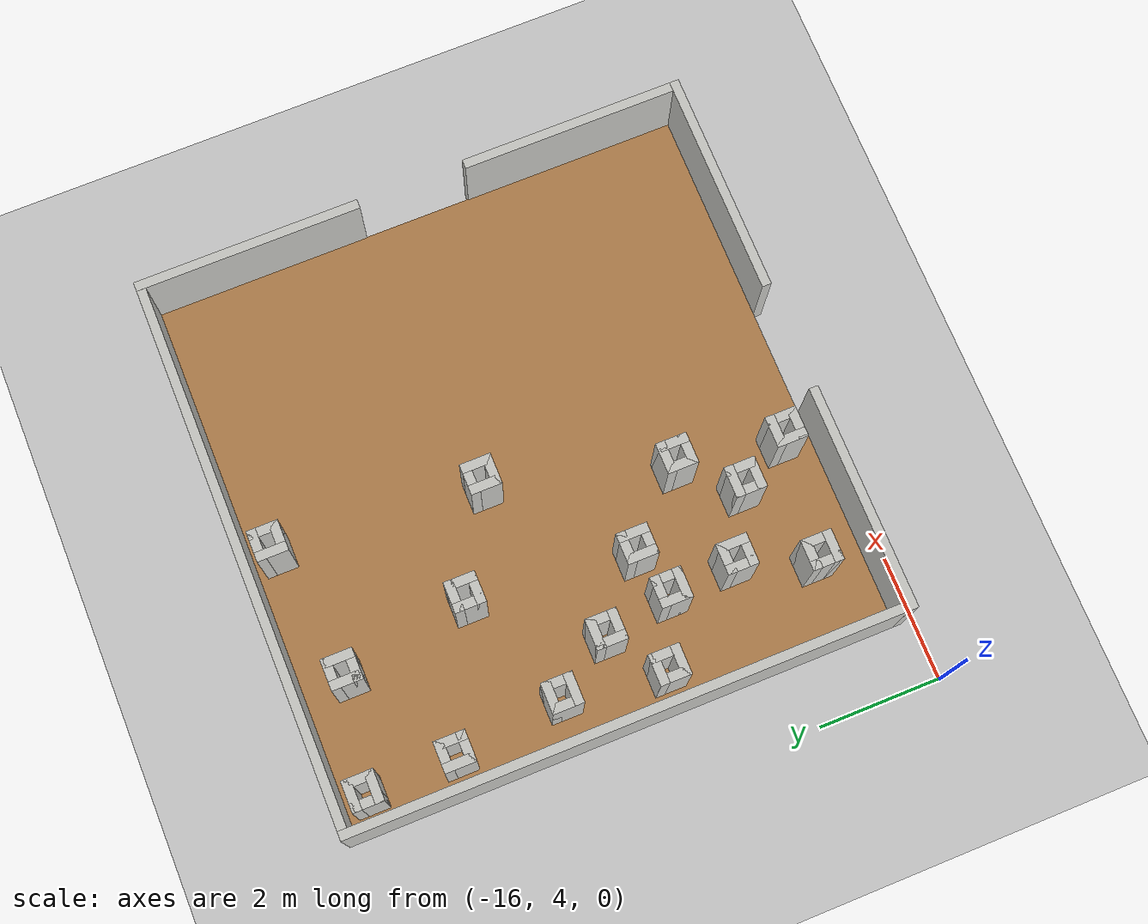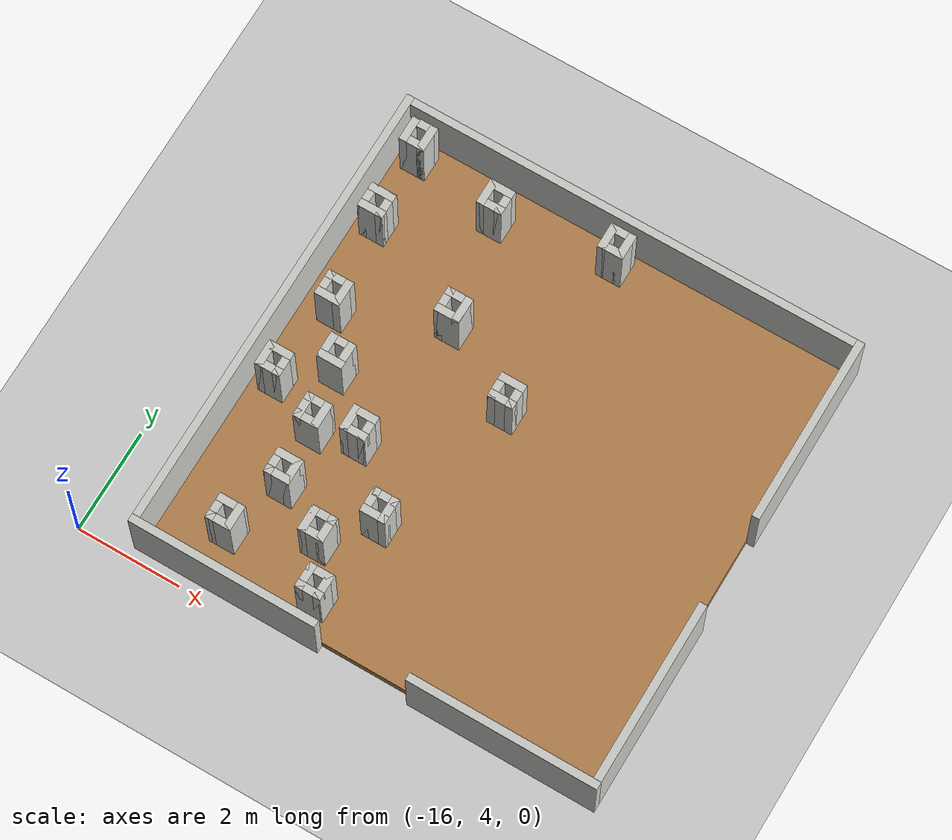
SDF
<sdf version="1.6">
 <world name="default">
  <model name="ground_plane">
   <static>1</static>
   <link name="link">
    <collision name="collision">
     <geometry><plane><normal>0 0 1</normal><size>100 100</size></plane></geometry>
     <surface><friction><ode><mu>100</mu><mu2>50</mu2></ode></friction></surface>
    </collision>
    <visual name="visual">
     <cast_shadows>0</cast_shadows>
     <geometry><plane><normal>0 0 1</normal><size>100 100</size></plane></geometry>
     <material>
      <script><uri>file://media/materials/scripts/gazebo.material</uri><name>Gazebo/Grey</name></script>
     </material>
    </visual>
   </link>
  </model>
  <model name="nerve_room_5x5ARENA_right">
   <pose>-10.4798 8.71779 0 0 -0 1.57</pose>
   <link name="Wall_11">
    <collision name="Wall_11_Collision">
     <geometry><box><size>8.75 0.15 1.5</size></box></geometry>
     <pose>0 0 0.75 0 -0 0</pose>
    </collision>
    <visual name="Wall_11_Visual">
     <pose>0 0 0.75 0 -0 0</pose>
     <geometry><box><size>8.75 0.15 1.5</size></box></geometry>
     <material>
      <script><uri>file://media/materials/scripts/gazebo.material</uri><name>Gazebo/CeilingTiled</name></script>
      <ambient>1 0.764706 0.305882 1</ambient>
     </material>
    </visual>
    <pose>4.44912 -0.000431 0 0 0 -1.5708</pose>
   </link>
   <link name="Wall_13">
    <collision name="Wall_13_Collision">
     <geometry><box><size>3.65 0.15 1.5</size></box></geometry>
     <pose>0 0 0.75 0 -0 0</pose>
    </collision>
    <visual name="Wall_13_Visual">
     <pose>0 0 0.75 0 -0 0</pose>
     <geometry><box><size>3.65 0.15 1.5</size></box></geometry>
     <material>
      <script><uri>file://media/materials/scripts/gazebo.material</uri><name>Gazebo/CeilingTiled</name></script>
      <ambient>1 0.764706 0.305882 1</ambient>
     </material>
    </visual>
    <pose>-4.44961 2.70076 0 0 0 -1.5708</pose>
   </link>
   <link name="Wall_15">
    <collision name="Wall_15_Collision">
     <geometry><box><size>3.65 0.15 1.5</size></box></geometry>
     <pose>0 0 0.75 0 -0 0</pose>
    </collision>
    <visual name="Wall_15_Visual">
     <pose>0 0 0.75 0 -0 0</pose>
     <geometry><box><size>3.65 0.15 1.5</size></box></geometry>
     <material>
      <script><uri>file://media/materials/scripts/gazebo.material</uri><name>Gazebo/CeilingTiled</name></script>
      <ambient>1 0.764706 0.305882 1</ambient>
     </material>
    </visual>
    <pose>2.69961 -4.45076 0 0 -0 0</pose>
   </link>
   <link name="Wall_17">
    <collision name="Wall_17_Collision">
     <geometry><box><size>8.90028 0.15 1.5</size></box></geometry>
     <pose>0 0 0.75 0 -0 0</pose>
    </collision>
    <visual name="Wall_17_Visual">
     <pose>0 0 0.75 0 -0 0</pose>
     <geometry><box><size>8.90028 0.15 1.5</size></box></geometry>
     <material>
      <script><uri>file://media/materials/scripts/gazebo.material</uri><name>Gazebo/CeilingTiled</name></script>
      <ambient>1 0.764706 0.305882 1</ambient>
     </material>
    </visual>
    <pose>0.074346 4.45022 0 0 0 -6.5e-05</pose>
   </link>
   <link name="Wall_21">
    <collision name="Wall_21_Collision">
     <geometry><box><size>3.5 0.15 1.5</size></box></geometry>
     <pose>0 0 0.75 0 -0 0</pose>
    </collision>
    <visual name="Wall_21_Visual">
     <pose>0 0 0.75 0 -0 0</pose>
     <geometry><box><size>3.5 0.15 1.5</size></box></geometry>
     <material>
      <script><uri>file://media/materials/scripts/gazebo.material</uri><name>Gazebo/CeilingTiled</name></script>
      <ambient>1 0.764706 0.305882 1</ambient>
     </material>
    </visual>
    <pose>-2.62383 -4.4498 0 0 -0 0</pose>
   </link>
   <link name="Wall_25">
    <collision name="Wall_25_Collision">
     <geometry><box><size>3.65 0.15 1.5</size></box></geometry>
     <pose>0 0 0.75 0 -0 0</pose>
    </collision>
    <visual name="Wall_25_Visual">
     <pose>0 0 0.75 0 -0 0</pose>
     <geometry><box><size>3.65 0.15 1.5</size></box></geometry>
     <material>
      <script><uri>file://media/materials/scripts/gazebo.material</uri><name>Gazebo/CeilingTiled</name></script>
      <ambient>1 0.764706 0.305882 1</ambient>
     </material>
    </visual>
    <pose>-4.44941 -2.70044 0 0 0 -1.5708</pose>
   </link>
   <link name="Wall_6">
    <collision name="Wall_6_Collision">
     <geometry><box><size>8.76 8.75 0.2</size></box></geometry>
     <pose>0 0 0.1 0 -0 0</pose>
    </collision>
    <visual name="Wall_6_Visual">
     <pose>0 0 0.1 0 -0 0</pose>
     <geometry><box><size>8.76 8.75 0.2</size></box></geometry>
     <material>
      <script><uri>file://media/materials/scripts/gazebo.material</uri><name>Gazebo/Wood</name></script>
      <ambient>1 0.764706 0.305882 1</ambient>
     </material>
    </visual>
    <pose>0.000485 -0.004173 0 0 -0 1.5708</pose>
   </link>
   <static>1</static>
  </model>
  <model name="nerve_obs_squarepillar_large_clone_1">
   <pose>-11.5344 6.57476 0.2 0 -0 0</pose>
   <link name="Wall_31">
    <collision name="Wall_31_Collision">
     <geometry><box><size>0.5 0.15 1.3</size></box></geometry>
     <pose>0 0 0.65 0 -0 0</pose>
    </collision>
    <visual name="Wall_31_Visual">
     <pose>0 0 0.65 0 -0 0</pose>
     <geometry><box><size>0.5 0.15 1.3</size></box></geometry>
     <material>
      <script><uri>file://media/materials/scripts/gazebo.material</uri><name>Gazebo/CeilingTiled</name></script>
      <ambient>1 0.764706 0.305882 1</ambient>
     </material>
    </visual>
    <pose>-0.175 0 0 0 0 -1.5708</pose>
   </link>
   <link name="Wall_32">
    <collision name="Wall_32_Collision">
     <geometry><box><size>0.5 0.15 1.3</size></box></geometry>
     <pose>0 0 0.65 0 -0 0</pose>
    </collision>
    <visual name="Wall_32_Visual">
     <pose>0 0 0.65 0 -0 0</pose>
     <geometry><box><size>0.5 0.15 1.3</size></box></geometry>
     <material>
      <script><uri>file://media/materials/scripts/gazebo.material</uri><name>Gazebo/CeilingTiled</name></script>
      <ambient>1 0.764706 0.305882 1</ambient>
     </material>
    </visual>
    <pose>0 -0.175 0 0 -0 0</pose>
   </link>
   <link name="Wall_33">
    <collision name="Wall_33_Collision">
     <geometry><box><size>0.5 0.15 1.3</size></box></geometry>
     <pose>0 0 0.65 0 -0 0</pose>
    </collision>
    <visual name="Wall_33_Visual">
     <pose>0 0 0.65 0 -0 0</pose>
     <geometry><box><size>0.5 0.15 1.3</size></box></geometry>
     <material>
      <script><uri>file://media/materials/scripts/gazebo.material</uri><name>Gazebo/CeilingTiled</name></script>
      <ambient>1 0.764706 0.305882 1</ambient>
     </material>
    </visual>
    <pose>0.175 0 0 0 -0 1.5708</pose>
   </link>
   <link name="Wall_34">
    <collision name="Wall_34_Collision">
     <geometry><box><size>0.5 0.15 1.3</size></box></geometry>
     <pose>0 0 0.65 0 -0 0</pose>
    </collision>
    <visual name="Wall_34_Visual">
     <pose>0 0 0.65 0 -0 0</pose>
     <geometry><box><size>0.5 0.15 1.3</size></box></geometry>
     <material>
      <script><uri>file://media/materials/scripts/gazebo.material</uri><name>Gazebo/CeilingTiled</name></script>
      <ambient>1 0.764706 0.305882 1</ambient>
     </material>
    </visual>
    <pose>0 0.175 0 0 -0 3.14159</pose>
   </link>
   <static>1</static>
  </model>
  <model name="nerve_obs_squarepillar_large_clone_6">
   <pose>-12.5841 7.65676 0.2 0 -0 0</pose>
   <link name="Wall_31">
    <collision name="Wall_31_Collision">
     <geometry><box><size>0.5 0.15 1.3</size></box></geometry>
     <pose>0 0 0.65 0 -0 0</pose>
    </collision>
    <visual name="Wall_31_Visual">
     <pose>0 0 0.65 0 -0 0</pose>
     <geometry><box><size>0.5 0.15 1.3</size></box></geometry>
     <material>
      <script><uri>file://media/materials/scripts/gazebo.material</uri><name>Gazebo/CeilingTiled</name></script>
      <ambient>1 0.764706 0.305882 1</ambient>
     </material>
    </visual>
    <pose>-0.175 0 0 0 0 -1.5708</pose>
   </link>
   <link name="Wall_32">
    <collision name="Wall_32_Collision">
     <geometry><box><size>0.5 0.15 1.3</size></box></geometry>
     <pose>0 0 0.65 0 -0 0</pose>
    </collision>
    <visual name="Wall_32_Visual">
     <pose>0 0 0.65 0 -0 0</pose>
     <geometry><box><size>0.5 0.15 1.3</size></box></geometry>
     <material>
      <script><uri>file://media/materials/scripts/gazebo.material</uri><name>Gazebo/CeilingTiled</name></script>
      <ambient>1 0.764706 0.305882 1</ambient>
     </material>
    </visual>
    <pose>0 -0.175 0 0 -0 0</pose>
   </link>
   <link name="Wall_33">
    <collision name="Wall_33_Collision">
     <geometry><box><size>0.5 0.15 1.3</size></box></geometry>
     <pose>0 0 0.65 0 -0 0</pose>
    </collision>
    <visual name="Wall_33_Visual">
     <pose>0 0 0.65 0 -0 0</pose>
     <geometry><box><size>0.5 0.15 1.3</size></box></geometry>
     <material>
      <script><uri>file://media/materials/scripts/gazebo.material</uri><name>Gazebo/CeilingTiled</name></script>
      <ambient>1 0.764706 0.305882 1</ambient>
     </material>
    </visual>
    <pose>0.175 0 0 0 -0 1.5708</pose>
   </link>
   <link name="Wall_34">
    <collision name="Wall_34_Collision">
     <geometry><box><size>0.5 0.15 1.3</size></box></geometry>
     <pose>0 0 0.65 0 -0 0</pose>
    </collision>
    <visual name="Wall_34_Visual">
     <pose>0 0 0.65 0 -0 0</pose>
     <geometry><box><size>0.5 0.15 1.3</size></box></geometry>
     <material>
      <script><uri>file://media/materials/scripts/gazebo.material</uri><name>Gazebo/CeilingTiled</name></script>
      <ambient>1 0.764706 0.305882 1</ambient>
     </material>
    </visual>
    <pose>0 0.175 0 0 -0 3.14159</pose>
   </link>
   <static>1</static>
  </model>
  <model name="nerve_obs_squarepillar_large_clone_7">
   <pose>-13.592 8.56687 0.2 0 -0 0</pose>
   <link name="Wall_31">
    <collision name="Wall_31_Collision">
     <geometry><box><size>0.5 0.15 1.3</size></box></geometry>
     <pose>0 0 0.65 0 -0 0</pose>
    </collision>
    <visual name="Wall_31_Visual">
     <pose>0 0 0.65 0 -0 0</pose>
     <geometry><box><size>0.5 0.15 1.3</size></box></geometry>
     <material>
      <script><uri>file://media/materials/scripts/gazebo.material</uri><name>Gazebo/CeilingTiled</name></script>
      <ambient>1 0.764706 0.305882 1</ambient>
     </material>
    </visual>
    <pose>-0.175 0 0 0 0 -1.5708</pose>
   </link>
   <link name="Wall_32">
    <collision name="Wall_32_Collision">
     <geometry><box><size>0.5 0.15 1.3</size></box></geometry>
     <pose>0 0 0.65 0 -0 0</pose>
    </collision>
    <visual name="Wall_32_Visual">
     <pose>0 0 0.65 0 -0 0</pose>
     <geometry><box><size>0.5 0.15 1.3</size></box></geometry>
     <material>
      <script><uri>file://media/materials/scripts/gazebo.material</uri><name>Gazebo/CeilingTiled</name></script>
      <ambient>1 0.764706 0.305882 1</ambient>
     </material>
    </visual>
    <pose>0 -0.175 0 0 -0 0</pose>
   </link>
   <link name="Wall_33">
    <collision name="Wall_33_Collision">
     <geometry><box><size>0.5 0.15 1.3</size></box></geometry>
     <pose>0 0 0.65 0 -0 0</pose>
    </collision>
    <visual name="Wall_33_Visual">
     <pose>0 0 0.65 0 -0 0</pose>
     <geometry><box><size>0.5 0.15 1.3</size></box></geometry>
     <material>
      <script><uri>file://media/materials/scripts/gazebo.material</uri><name>Gazebo/CeilingTiled</name></script>
      <ambient>1 0.764706 0.305882 1</ambient>
     </material>
    </visual>
    <pose>0.175 0 0 0 -0 1.5708</pose>
   </link>
   <link name="Wall_34">
    <collision name="Wall_34_Collision">
     <geometry><box><size>0.5 0.15 1.3</size></box></geometry>
     <pose>0 0 0.65 0 -0 0</pose>
    </collision>
    <visual name="Wall_34_Visual">
     <pose>0 0 0.65 0 -0 0</pose>
     <geometry><box><size>0.5 0.15 1.3</size></box></geometry>
     <material>
      <script><uri>file://media/materials/scripts/gazebo.material</uri><name>Gazebo/CeilingTiled</name></script>
      <ambient>1 0.764706 0.305882 1</ambient>
     </material>
    </visual>
    <pose>0 0.175 0 0 -0 3.14159</pose>
   </link>
   <static>1</static>
  </model>
  <model name="nerve_obs_squarepillar_large_clone_8">
   <pose>-14.4212 11.2732 0.2 0 -0 0</pose>
   <link name="Wall_31">
    <collision name="Wall_31_Collision">
     <geometry><box><size>0.5 0.15 1.3</size></box></geometry>
     <pose>0 0 0.65 0 -0 0</pose>
    </collision>
    <visual name="Wall_31_Visual">
     <pose>0 0 0.65 0 -0 0</pose>
     <geometry><box><size>0.5 0.15 1.3</size></box></geometry>
     <material>
      <script><uri>file://media/materials/scripts/gazebo.material</uri><name>Gazebo/CeilingTiled</name></script>
      <ambient>1 0.764706 0.305882 1</ambient>
     </material>
    </visual>
    <pose>-0.175 0 0 0 0 -1.5708</pose>
   </link>
   <link name="Wall_32">
    <collision name="Wall_32_Collision">
     <geometry><box><size>0.5 0.15 1.3</size></box></geometry>
     <pose>0 0 0.65 0 -0 0</pose>
    </collision>
    <visual name="Wall_32_Visual">
     <pose>0 0 0.65 0 -0 0</pose>
     <geometry><box><size>0.5 0.15 1.3</size></box></geometry>
     <material>
      <script><uri>file://media/materials/scripts/gazebo.material</uri><name>Gazebo/CeilingTiled</name></script>
      <ambient>1 0.764706 0.305882 1</ambient>
     </material>
    </visual>
    <pose>0 -0.175 0 0 -0 0</pose>
   </link>
   <link name="Wall_33">
    <collision name="Wall_33_Collision">
     <geometry><box><size>0.5 0.15 1.3</size></box></geometry>
     <pose>0 0 0.65 0 -0 0</pose>
    </collision>
    <visual name="Wall_33_Visual">
     <pose>0 0 0.65 0 -0 0</pose>
     <geometry><box><size>0.5 0.15 1.3</size></box></geometry>
     <material>
      <script><uri>file://media/materials/scripts/gazebo.material</uri><name>Gazebo/CeilingTiled</name></script>
      <ambient>1 0.764706 0.305882 1</ambient>
     </material>
    </visual>
    <pose>0.175 0 0 0 -0 1.5708</pose>
   </link>
   <link name="Wall_34">
    <collision name="Wall_34_Collision">
     <geometry><box><size>0.5 0.15 1.3</size></box></geometry>
     <pose>0 0 0.65 0 -0 0</pose>
    </collision>
    <visual name="Wall_34_Visual">
     <pose>0 0 0.65 0 -0 0</pose>
     <geometry><box><size>0.5 0.15 1.3</size></box></geometry>
     <material>
      <script><uri>file://media/materials/scripts/gazebo.material</uri><name>Gazebo/CeilingTiled</name></script>
      <ambient>1 0.764706 0.305882 1</ambient>
     </material>
    </visual>
    <pose>0 0.175 0 0 -0 3.14159</pose>
   </link>
   <static>1</static>
  </model>
  <model name="nerve_obs_squarepillar_large_clone_9">
   <pose>-12.6981 12.3671 0.2 0 -0 0</pose>
   <link name="Wall_31">
    <collision name="Wall_31_Collision">
     <geometry><box><size>0.5 0.15 1.3</size></box></geometry>
     <pose>0 0 0.65 0 -0 0</pose>
    </collision>
    <visual name="Wall_31_Visual">
     <pose>0 0 0.65 0 -0 0</pose>
     <geometry><box><size>0.5 0.15 1.3</size></box></geometry>
     <material>
      <script><uri>file://media/materials/scripts/gazebo.material</uri><name>Gazebo/CeilingTiled</name></script>
      <ambient>1 0.764706 0.305882 1</ambient>
     </material>
    </visual>
    <pose>-0.175 0 0 0 0 -1.5708</pose>
   </link>
   <link name="Wall_32">
    <collision name="Wall_32_Collision">
     <geometry><box><size>0.5 0.15 1.3</size></box></geometry>
     <pose>0 0 0.65 0 -0 0</pose>
    </collision>
    <visual name="Wall_32_Visual">
     <pose>0 0 0.65 0 -0 0</pose>
     <geometry><box><size>0.5 0.15 1.3</size></box></geometry>
     <material>
      <script><uri>file://media/materials/scripts/gazebo.material</uri><name>Gazebo/CeilingTiled</name></script>
      <ambient>1 0.764706 0.305882 1</ambient>
     </material>
    </visual>
    <pose>0 -0.175 0 0 -0 0</pose>
   </link>
   <link name="Wall_33">
    <collision name="Wall_33_Collision">
     <geometry><box><size>0.5 0.15 1.3</size></box></geometry>
     <pose>0 0 0.65 0 -0 0</pose>
    </collision>
    <visual name="Wall_33_Visual">
     <pose>0 0 0.65 0 -0 0</pose>
     <geometry><box><size>0.5 0.15 1.3</size></box></geometry>
     <material>
      <script><uri>file://media/materials/scripts/gazebo.material</uri><name>Gazebo/CeilingTiled</name></script>
      <ambient>1 0.764706 0.305882 1</ambient>
     </material>
    </visual>
    <pose>0.175 0 0 0 -0 1.5708</pose>
   </link>
   <link name="Wall_34">
    <collision name="Wall_34_Collision">
     <geometry><box><size>0.5 0.15 1.3</size></box></geometry>
     <pose>0 0 0.65 0 -0 0</pose>
    </collision>
    <visual name="Wall_34_Visual">
     <pose>0 0 0.65 0 -0 0</pose>
     <geometry><box><size>0.5 0.15 1.3</size></box></geometry>
     <material>
      <script><uri>file://media/materials/scripts/gazebo.material</uri><name>Gazebo/CeilingTiled</name></script>
      <ambient>1 0.764706 0.305882 1</ambient>
     </material>
    </visual>
    <pose>0 0.175 0 0 -0 3.14159</pose>
   </link>
   <static>1</static>
  </model>
  <model name="nerve_obs_squarepillar_large_clone_10">
   <pose>-10.5016 12.7174 0.2 0 -0 0</pose>
   <link name="Wall_31">
    <collision name="Wall_31_Collision">
     <geometry><box><size>0.5 0.15 1.3</size></box></geometry>
     <pose>0 0 0.65 0 -0 0</pose>
    </collision>
    <visual name="Wall_31_Visual">
     <pose>0 0 0.65 0 -0 0</pose>
     <geometry><box><size>0.5 0.15 1.3</size></box></geometry>
     <material>
      <script><uri>file://media/materials/scripts/gazebo.material</uri><name>Gazebo/CeilingTiled</name></script>
      <ambient>1 0.764706 0.305882 1</ambient>
     </material>
    </visual>
    <pose>-0.175 0 0 0 0 -1.5708</pose>
   </link>
   <link name="Wall_32">
    <collision name="Wall_32_Collision">
     <geometry><box><size>0.5 0.15 1.3</size></box></geometry>
     <pose>0 0 0.65 0 -0 0</pose>
    </collision>
    <visual name="Wall_32_Visual">
     <pose>0 0 0.65 0 -0 0</pose>
     <geometry><box><size>0.5 0.15 1.3</size></box></geometry>
     <material>
      <script><uri>file://media/materials/scripts/gazebo.material</uri><name>Gazebo/CeilingTiled</name></script>
      <ambient>1 0.764706 0.305882 1</ambient>
     </material>
    </visual>
    <pose>0 -0.175 0 0 -0 0</pose>
   </link>
   <link name="Wall_33">
    <collision name="Wall_33_Collision">
     <geometry><box><size>0.5 0.15 1.3</size></box></geometry>
     <pose>0 0 0.65 0 -0 0</pose>
    </collision>
    <visual name="Wall_33_Visual">
     <pose>0 0 0.65 0 -0 0</pose>
     <geometry><box><size>0.5 0.15 1.3</size></box></geometry>
     <material>
      <script><uri>file://media/materials/scripts/gazebo.material</uri><name>Gazebo/CeilingTiled</name></script>
      <ambient>1 0.764706 0.305882 1</ambient>
     </material>
    </visual>
    <pose>0.175 0 0 0 -0 1.5708</pose>
   </link>
   <link name="Wall_34">
    <collision name="Wall_34_Collision">
     <geometry><box><size>0.5 0.15 1.3</size></box></geometry>
     <pose>0 0 0.65 0 -0 0</pose>
    </collision>
    <visual name="Wall_34_Visual">
     <pose>0 0 0.65 0 -0 0</pose>
     <geometry><box><size>0.5 0.15 1.3</size></box></geometry>
     <material>
      <script><uri>file://media/materials/scripts/gazebo.material</uri><name>Gazebo/CeilingTiled</name></script>
      <ambient>1 0.764706 0.305882 1</ambient>
     </material>
    </visual>
    <pose>0 0.175 0 0 -0 3.14159</pose>
   </link>
   <static>1</static>
  </model>
  <model name="nerve_obs_squarepillar_large_clone_13">
   <pose>-12.308 10.29 0.2 0 -0 0</pose>
   <link name="Wall_31">
    <collision name="Wall_31_Collision">
     <geometry><box><size>0.5 0.15 1.3</size></box></geometry>
     <pose>0 0 0.65 0 -0 0</pose>
    </collision>
    <visual name="Wall_31_Visual">
     <pose>0 0 0.65 0 -0 0</pose>
     <geometry><box><size>0.5 0.15 1.3</size></box></geometry>
     <material>
      <script><uri>file://media/materials/scripts/gazebo.material</uri><name>Gazebo/CeilingTiled</name></script>
      <ambient>1 0.764706 0.305882 1</ambient>
     </material>
    </visual>
    <pose>-0.175 0 0 0 0 -1.5708</pose>
   </link>
   <link name="Wall_32">
    <collision name="Wall_32_Collision">
     <geometry><box><size>0.5 0.15 1.3</size></box></geometry>
     <pose>0 0 0.65 0 -0 0</pose>
    </collision>
    <visual name="Wall_32_Visual">
     <pose>0 0 0.65 0 -0 0</pose>
     <geometry><box><size>0.5 0.15 1.3</size></box></geometry>
     <material>
      <script><uri>file://media/materials/scripts/gazebo.material</uri><name>Gazebo/CeilingTiled</name></script>
      <ambient>1 0.764706 0.305882 1</ambient>
     </material>
    </visual>
    <pose>0 -0.175 0 0 -0 0</pose>
   </link>
   <link name="Wall_33">
    <collision name="Wall_33_Collision">
     <geometry><box><size>0.5 0.15 1.3</size></box></geometry>
     <pose>0 0 0.65 0 -0 0</pose>
    </collision>
    <visual name="Wall_33_Visual">
     <pose>0 0 0.65 0 -0 0</pose>
     <geometry><box><size>0.5 0.15 1.3</size></box></geometry>
     <material>
      <script><uri>file://media/materials/scripts/gazebo.material</uri><name>Gazebo/CeilingTiled</name></script>
      <ambient>1 0.764706 0.305882 1</ambient>
     </material>
    </visual>
    <pose>0.175 0 0 0 -0 1.5708</pose>
   </link>
   <link name="Wall_34">
    <collision name="Wall_34_Collision">
     <geometry><box><size>0.5 0.15 1.3</size></box></geometry>
     <pose>0 0 0.65 0 -0 0</pose>
    </collision>
    <visual name="Wall_34_Visual">
     <pose>0 0 0.65 0 -0 0</pose>
     <geometry><box><size>0.5 0.15 1.3</size></box></geometry>
     <material>
      <script><uri>file://media/materials/scripts/gazebo.material</uri><name>Gazebo/CeilingTiled</name></script>
      <ambient>1 0.764706 0.305882 1</ambient>
     </material>
    </visual>
    <pose>0 0.175 0 0 -0 3.14159</pose>
   </link>
   <static>1</static>
  </model>
  <model name="nerve_obs_squarepillar_large_clone_14">
   <pose>-10.7364 9.41672 0.2 0 -0 0</pose>
   <link name="Wall_31">
    <collision name="Wall_31_Collision">
     <geometry><box><size>0.5 0.15 1.3</size></box></geometry>
     <pose>0 0 0.65 0 -0 0</pose>
    </collision>
    <visual name="Wall_31_Visual">
     <pose>0 0 0.65 0 -0 0</pose>
     <geometry><box><size>0.5 0.15 1.3</size></box></geometry>
     <material>
      <script><uri>file://media/materials/scripts/gazebo.material</uri><name>Gazebo/CeilingTiled</name></script>
      <ambient>1 0.764706 0.305882 1</ambient>
     </material>
    </visual>
    <pose>-0.175 0 0 0 0 -1.5708</pose>
   </link>
   <link name="Wall_32">
    <collision name="Wall_32_Collision">
     <geometry><box><size>0.5 0.15 1.3</size></box></geometry>
     <pose>0 0 0.65 0 -0 0</pose>
    </collision>
    <visual name="Wall_32_Visual">
     <pose>0 0 0.65 0 -0 0</pose>
     <geometry><box><size>0.5 0.15 1.3</size></box></geometry>
     <material>
      <script><uri>file://media/materials/scripts/gazebo.material</uri><name>Gazebo/CeilingTiled</name></script>
      <ambient>1 0.764706 0.305882 1</ambient>
     </material>
    </visual>
    <pose>0 -0.175 0 0 -0 0</pose>
   </link>
   <link name="Wall_33">
    <collision name="Wall_33_Collision">
     <geometry><box><size>0.5 0.15 1.3</size></box></geometry>
     <pose>0 0 0.65 0 -0 0</pose>
    </collision>
    <visual name="Wall_33_Visual">
     <pose>0 0 0.65 0 -0 0</pose>
     <geometry><box><size>0.5 0.15 1.3</size></box></geometry>
     <material>
      <script><uri>file://media/materials/scripts/gazebo.material</uri><name>Gazebo/CeilingTiled</name></script>
      <ambient>1 0.764706 0.305882 1</ambient>
     </material>
    </visual>
    <pose>0.175 0 0 0 -0 1.5708</pose>
   </link>
   <link name="Wall_34">
    <collision name="Wall_34_Collision">
     <geometry><box><size>0.5 0.15 1.3</size></box></geometry>
     <pose>0 0 0.65 0 -0 0</pose>
    </collision>
    <visual name="Wall_34_Visual">
     <pose>0 0 0.65 0 -0 0</pose>
     <geometry><box><size>0.5 0.15 1.3</size></box></geometry>
     <material>
      <script><uri>file://media/materials/scripts/gazebo.material</uri><name>Gazebo/CeilingTiled</name></script>
      <ambient>1 0.764706 0.305882 1</ambient>
     </material>
    </visual>
    <pose>0 0.175 0 0 -0 3.14159</pose>
   </link>
   <static>1</static>
  </model>
  <model name="nerve_obs_squarepillar_large_clone_22">
   <pose>-11.7738 4.89086 0.2 0 -0 0</pose>
   <link name="Wall_31">
    <collision name="Wall_31_Collision">
     <geometry><box><size>0.5 0.15 1.3</size></box></geometry>
     <pose>0 0 0.65 0 -0 0</pose>
    </collision>
    <visual name="Wall_31_Visual">
     <pose>0 0 0.65 0 -0 0</pose>
     <geometry><box><size>0.5 0.15 1.3</size></box></geometry>
     <material>
      <script><uri>file://media/materials/scripts/gazebo.material</uri><name>Gazebo/CeilingTiled</name></script>
      <ambient>1 0.764706 0.305882 1</ambient>
     </material>
    </visual>
    <pose>-0.175 0 0 0 0 -1.5708</pose>
   </link>
   <link name="Wall_32">
    <collision name="Wall_32_Collision">
     <geometry><box><size>0.5 0.15 1.3</size></box></geometry>
     <pose>0 0 0.65 0 -0 0</pose>
    </collision>
    <visual name="Wall_32_Visual">
     <pose>0 0 0.65 0 -0 0</pose>
     <geometry><box><size>0.5 0.15 1.3</size></box></geometry>
     <material>
      <script><uri>file://media/materials/scripts/gazebo.material</uri><name>Gazebo/CeilingTiled</name></script>
      <ambient>1 0.764706 0.305882 1</ambient>
     </material>
    </visual>
    <pose>0 -0.175 0 0 -0 0</pose>
   </link>
   <link name="Wall_33">
    <collision name="Wall_33_Collision">
     <geometry><box><size>0.5 0.15 1.3</size></box></geometry>
     <pose>0 0 0.65 0 -0 0</pose>
    </collision>
    <visual name="Wall_33_Visual">
     <pose>0 0 0.65 0 -0 0</pose>
     <geometry><box><size>0.5 0.15 1.3</size></box></geometry>
     <material>
      <script><uri>file://media/materials/scripts/gazebo.material</uri><name>Gazebo/CeilingTiled</name></script>
      <ambient>1 0.764706 0.305882 1</ambient>
     </material>
    </visual>
    <pose>0.175 0 0 0 -0 1.5708</pose>
   </link>
   <link name="Wall_34">
    <collision name="Wall_34_Collision">
     <geometry><box><size>0.5 0.15 1.3</size></box></geometry>
     <pose>0 0 0.65 0 -0 0</pose>
    </collision>
    <visual name="Wall_34_Visual">
     <pose>0 0 0.65 0 -0 0</pose>
     <geometry><box><size>0.5 0.15 1.3</size></box></geometry>
     <material>
      <script><uri>file://media/materials/scripts/gazebo.material</uri><name>Gazebo/CeilingTiled</name></script>
      <ambient>1 0.764706 0.305882 1</ambient>
     </material>
    </visual>
    <pose>0 0.175 0 0 -0 3.14159</pose>
   </link>
   <static>1</static>
  </model>
  <model name="nerve_obs_squarepillar_large_clone_23">
   <pose>-12.2553 5.77211 0.2 0 -0 0</pose>
   <link name="Wall_31">
    <collision name="Wall_31_Collision">
     <geometry><box><size>0.5 0.15 1.3</size></box></geometry>
     <pose>0 0 0.65 0 -0 0</pose>
    </collision>
    <visual name="Wall_31_Visual">
     <pose>0 0 0.65 0 -0 0</pose>
     <geometry><box><size>0.5 0.15 1.3</size></box></geometry>
     <material>
      <script><uri>file://media/materials/scripts/gazebo.material</uri><name>Gazebo/CeilingTiled</name></script>
      <ambient>1 0.764706 0.305882 1</ambient>
     </material>
    </visual>
    <pose>-0.175 0 0 0 0 -1.5708</pose>
   </link>
   <link name="Wall_32">
    <collision name="Wall_32_Collision">
     <geometry><box><size>0.5 0.15 1.3</size></box></geometry>
     <pose>0 0 0.65 0 -0 0</pose>
    </collision>
    <visual name="Wall_32_Visual">
     <pose>0 0 0.65 0 -0 0</pose>
     <geometry><box><size>0.5 0.15 1.3</size></box></geometry>
     <material>
      <script><uri>file://media/materials/scripts/gazebo.material</uri><name>Gazebo/CeilingTiled</name></script>
      <ambient>1 0.764706 0.305882 1</ambient>
     </material>
    </visual>
    <pose>0 -0.175 0 0 -0 0</pose>
   </link>
   <link name="Wall_33">
    <collision name="Wall_33_Collision">
     <geometry><box><size>0.5 0.15 1.3</size></box></geometry>
     <pose>0 0 0.65 0 -0 0</pose>
    </collision>
    <visual name="Wall_33_Visual">
     <pose>0 0 0.65 0 -0 0</pose>
     <geometry><box><size>0.5 0.15 1.3</size></box></geometry>
     <material>
      <script><uri>file://media/materials/scripts/gazebo.material</uri><name>Gazebo/CeilingTiled</name></script>
      <ambient>1 0.764706 0.305882 1</ambient>
     </material>
    </visual>
    <pose>0.175 0 0 0 -0 1.5708</pose>
   </link>
   <link name="Wall_34">
    <collision name="Wall_34_Collision">
     <geometry><box><size>0.5 0.15 1.3</size></box></geometry>
     <pose>0 0 0.65 0 -0 0</pose>
    </collision>
    <visual name="Wall_34_Visual">
     <pose>0 0 0.65 0 -0 0</pose>
     <geometry><box><size>0.5 0.15 1.3</size></box></geometry>
     <material>
      <script><uri>file://media/materials/scripts/gazebo.material</uri><name>Gazebo/CeilingTiled</name></script>
      <ambient>1 0.764706 0.305882 1</ambient>
     </material>
    </visual>
    <pose>0 0.175 0 0 -0 3.14159</pose>
   </link>
   <static>1</static>
  </model>
  <model name="nerve_obs_squarepillar_large_clone_24">
   <pose>-13.6929 5.16139 0.2 0 -0 0</pose>
   <link name="Wall_31">
    <collision name="Wall_31_Collision">
     <geometry><box><size>0.5 0.15 1.3</size></box></geometry>
     <pose>0 0 0.65 0 -0 0</pose>
    </collision>
    <visual name="Wall_31_Visual">
     <pose>0 0 0.65 0 -0 0</pose>
     <geometry><box><size>0.5 0.15 1.3</size></box></geometry>
     <material>
      <script><uri>file://media/materials/scripts/gazebo.material</uri><name>Gazebo/CeilingTiled</name></script>
      <ambient>1 0.764706 0.305882 1</ambient>
     </material>
    </visual>
    <pose>-0.175 0 0 0 0 -1.5708</pose>
   </link>
   <link name="Wall_32">
    <collision name="Wall_32_Collision">
     <geometry><box><size>0.5 0.15 1.3</size></box></geometry>
     <pose>0 0 0.65 0 -0 0</pose>
    </collision>
    <visual name="Wall_32_Visual">
     <pose>0 0 0.65 0 -0 0</pose>
     <geometry><box><size>0.5 0.15 1.3</size></box></geometry>
     <material>
      <script><uri>file://media/materials/scripts/gazebo.material</uri><name>Gazebo/CeilingTiled</name></script>
      <ambient>1 0.764706 0.305882 1</ambient>
     </material>
    </visual>
    <pose>0 -0.175 0 0 -0 0</pose>
   </link>
   <link name="Wall_33">
    <collision name="Wall_33_Collision">
     <geometry><box><size>0.5 0.15 1.3</size></box></geometry>
     <pose>0 0 0.65 0 -0 0</pose>
    </collision>
    <visual name="Wall_33_Visual">
     <pose>0 0 0.65 0 -0 0</pose>
     <geometry><box><size>0.5 0.15 1.3</size></box></geometry>
     <material>
      <script><uri>file://media/materials/scripts/gazebo.material</uri><name>Gazebo/CeilingTiled</name></script>
      <ambient>1 0.764706 0.305882 1</ambient>
     </material>
    </visual>
    <pose>0.175 0 0 0 -0 1.5708</pose>
   </link>
   <link name="Wall_34">
    <collision name="Wall_34_Collision">
     <geometry><box><size>0.5 0.15 1.3</size></box></geometry>
     <pose>0 0 0.65 0 -0 0</pose>
    </collision>
    <visual name="Wall_34_Visual">
     <pose>0 0 0.65 0 -0 0</pose>
     <geometry><box><size>0.5 0.15 1.3</size></box></geometry>
     <material>
      <script><uri>file://media/materials/scripts/gazebo.material</uri><name>Gazebo/CeilingTiled</name></script>
      <ambient>1 0.764706 0.305882 1</ambient>
     </material>
    </visual>
    <pose>0 0.175 0 0 -0 3.14159</pose>
   </link>
   <static>1</static>
  </model>
  <model name="nerve_obs_squarepillar_large_clone_25">
   <pose>-13.2795 6.35013 0.2 0 -0 0</pose>
   <link name="Wall_31">
    <collision name="Wall_31_Collision">
     <geometry><box><size>0.5 0.15 1.3</size></box></geometry>
     <pose>0 0 0.65 0 -0 0</pose>
    </collision>
    <visual name="Wall_31_Visual">
     <pose>0 0 0.65 0 -0 0</pose>
     <geometry><box><size>0.5 0.15 1.3</size></box></geometry>
     <material>
      <script><uri>file://media/materials/scripts/gazebo.material</uri><name>Gazebo/CeilingTiled</name></script>
      <ambient>1 0.764706 0.305882 1</ambient>
     </material>
    </visual>
    <pose>-0.175 0 0 0 0 -1.5708</pose>
   </link>
   <link name="Wall_32">
    <collision name="Wall_32_Collision">
     <geometry><box><size>0.5 0.15 1.3</size></box></geometry>
     <pose>0 0 0.65 0 -0 0</pose>
    </collision>
    <visual name="Wall_32_Visual">
     <pose>0 0 0.65 0 -0 0</pose>
     <geometry><box><size>0.5 0.15 1.3</size></box></geometry>
     <material>
      <script><uri>file://media/materials/scripts/gazebo.material</uri><name>Gazebo/CeilingTiled</name></script>
      <ambient>1 0.764706 0.305882 1</ambient>
     </material>
    </visual>
    <pose>0 -0.175 0 0 -0 0</pose>
   </link>
   <link name="Wall_33">
    <collision name="Wall_33_Collision">
     <geometry><box><size>0.5 0.15 1.3</size></box></geometry>
     <pose>0 0 0.65 0 -0 0</pose>
    </collision>
    <visual name="Wall_33_Visual">
     <pose>0 0 0.65 0 -0 0</pose>
     <geometry><box><size>0.5 0.15 1.3</size></box></geometry>
     <material>
      <script><uri>file://media/materials/scripts/gazebo.material</uri><name>Gazebo/CeilingTiled</name></script>
      <ambient>1 0.764706 0.305882 1</ambient>
     </material>
    </visual>
    <pose>0.175 0 0 0 -0 1.5708</pose>
   </link>
   <link name="Wall_34">
    <collision name="Wall_34_Collision">
     <geometry><box><size>0.5 0.15 1.3</size></box></geometry>
     <pose>0 0 0.65 0 -0 0</pose>
    </collision>
    <visual name="Wall_34_Visual">
     <pose>0 0 0.65 0 -0 0</pose>
     <geometry><box><size>0.5 0.15 1.3</size></box></geometry>
     <material>
      <script><uri>file://media/materials/scripts/gazebo.material</uri><name>Gazebo/CeilingTiled</name></script>
      <ambient>1 0.764706 0.305882 1</ambient>
     </material>
    </visual>
    <pose>0 0.175 0 0 -0 3.14159</pose>
   </link>
   <static>1</static>
  </model>
  <model name="nerve_obs_squarepillar_large_clone_26">
   <pose>-14.4202 7.91139 0.2 0 -0 0</pose>
   <link name="Wall_31">
    <collision name="Wall_31_Collision">
     <geometry><box><size>0.5 0.15 1.3</size></box></geometry>
     <pose>0 0 0.65 0 -0 0</pose>
    </collision>
    <visual name="Wall_31_Visual">
     <pose>0 0 0.65 0 -0 0</pose>
     <geometry><box><size>0.5 0.15 1.3</size></box></geometry>
     <material>
      <script><uri>file://media/materials/scripts/gazebo.material</uri><name>Gazebo/CeilingTiled</name></script>
      <ambient>1 0.764706 0.305882 1</ambient>
     </material>
    </visual>
    <pose>-0.175 0 0 0 0 -1.5708</pose>
   </link>
   <link name="Wall_32">
    <collision name="Wall_32_Collision">
     <geometry><box><size>0.5 0.15 1.3</size></box></geometry>
     <pose>0 0 0.65 0 -0 0</pose>
    </collision>
    <visual name="Wall_32_Visual">
     <pose>0 0 0.65 0 -0 0</pose>
     <geometry><box><size>0.5 0.15 1.3</size></box></geometry>
     <material>
      <script><uri>file://media/materials/scripts/gazebo.material</uri><name>Gazebo/CeilingTiled</name></script>
      <ambient>1 0.764706 0.305882 1</ambient>
     </material>
    </visual>
    <pose>0 -0.175 0 0 -0 0</pose>
   </link>
   <link name="Wall_33">
    <collision name="Wall_33_Collision">
     <geometry><box><size>0.5 0.15 1.3</size></box></geometry>
     <pose>0 0 0.65 0 -0 0</pose>
    </collision>
    <visual name="Wall_33_Visual">
     <pose>0 0 0.65 0 -0 0</pose>
     <geometry><box><size>0.5 0.15 1.3</size></box></geometry>
     <material>
      <script><uri>file://media/materials/scripts/gazebo.material</uri><name>Gazebo/CeilingTiled</name></script>
      <ambient>1 0.764706 0.305882 1</ambient>
     </material>
    </visual>
    <pose>0.175 0 0 0 -0 1.5708</pose>
   </link>
   <link name="Wall_34">
    <collision name="Wall_34_Collision">
     <geometry><box><size>0.5 0.15 1.3</size></box></geometry>
     <pose>0 0 0.65 0 -0 0</pose>
    </collision>
    <visual name="Wall_34_Visual">
     <pose>0 0 0.65 0 -0 0</pose>
     <geometry><box><size>0.5 0.15 1.3</size></box></geometry>
     <material>
      <script><uri>file://media/materials/scripts/gazebo.material</uri><name>Gazebo/CeilingTiled</name></script>
      <ambient>1 0.764706 0.305882 1</ambient>
     </material>
    </visual>
    <pose>0 0.175 0 0 -0 3.14159</pose>
   </link>
   <static>1</static>
  </model>
  <model name="nerve_obs_squarepillar_large_clone_27">
   <pose>-13.3765 7.44658 0.2 0 -0 0</pose>
   <link name="Wall_31">
    <collision name="Wall_31_Collision">
     <geometry><box><size>0.5 0.15 1.3</size></box></geometry>
     <pose>0 0 0.65 0 -0 0</pose>
    </collision>
    <visual name="Wall_31_Visual">
     <pose>0 0 0.65 0 -0 0</pose>
     <geometry><box><size>0.5 0.15 1.3</size></box></geometry>
     <material>
      <script><uri>file://media/materials/scripts/gazebo.material</uri><name>Gazebo/CeilingTiled</name></script>
      <ambient>1 0.764706 0.305882 1</ambient>
     </material>
    </visual>
    <pose>-0.175 0 0 0 0 -1.5708</pose>
   </link>
   <link name="Wall_32">
    <collision name="Wall_32_Collision">
     <geometry><box><size>0.5 0.15 1.3</size></box></geometry>
     <pose>0 0 0.65 0 -0 0</pose>
    </collision>
    <visual name="Wall_32_Visual">
     <pose>0 0 0.65 0 -0 0</pose>
     <geometry><box><size>0.5 0.15 1.3</size></box></geometry>
     <material>
      <script><uri>file://media/materials/scripts/gazebo.material</uri><name>Gazebo/CeilingTiled</name></script>
      <ambient>1 0.764706 0.305882 1</ambient>
     </material>
    </visual>
    <pose>0 -0.175 0 0 -0 0</pose>
   </link>
   <link name="Wall_33">
    <collision name="Wall_33_Collision">
     <geometry><box><size>0.5 0.15 1.3</size></box></geometry>
     <pose>0 0 0.65 0 -0 0</pose>
    </collision>
    <visual name="Wall_33_Visual">
     <pose>0 0 0.65 0 -0 0</pose>
     <geometry><box><size>0.5 0.15 1.3</size></box></geometry>
     <material>
      <script><uri>file://media/materials/scripts/gazebo.material</uri><name>Gazebo/CeilingTiled</name></script>
      <ambient>1 0.764706 0.305882 1</ambient>
     </material>
    </visual>
    <pose>0.175 0 0 0 -0 1.5708</pose>
   </link>
   <link name="Wall_34">
    <collision name="Wall_34_Collision">
     <geometry><box><size>0.5 0.15 1.3</size></box></geometry>
     <pose>0 0 0.65 0 -0 0</pose>
    </collision>
    <visual name="Wall_34_Visual">
     <pose>0 0 0.65 0 -0 0</pose>
     <geometry><box><size>0.5 0.15 1.3</size></box></geometry>
     <material>
      <script><uri>file://media/materials/scripts/gazebo.material</uri><name>Gazebo/CeilingTiled</name></script>
      <ambient>1 0.764706 0.305882 1</ambient>
     </material>
    </visual>
    <pose>0 0.175 0 0 -0 3.14159</pose>
   </link>
   <static>1</static>
  </model>
  <model name="nerve_obs_squarepillar_large_clone_28">
   <pose>-14.2172 9.51882 0.2 0 -0 0</pose>
   <link name="Wall_31">
    <collision name="Wall_31_Collision">
     <geometry><box><size>0.5 0.15 1.3</size></box></geometry>
     <pose>0 0 0.65 0 -0 0</pose>
    </collision>
    <visual name="Wall_31_Visual">
     <pose>0 0 0.65 0 -0 0</pose>
     <geometry><box><size>0.5 0.15 1.3</size></box></geometry>
     <material>
      <script><uri>file://media/materials/scripts/gazebo.material</uri><name>Gazebo/CeilingTiled</name></script>
      <ambient>1 0.764706 0.305882 1</ambient>
     </material>
    </visual>
    <pose>-0.175 0 0 0 0 -1.5708</pose>
   </link>
   <link name="Wall_32">
    <collision name="Wall_32_Collision">
     <geometry><box><size>0.5 0.15 1.3</size></box></geometry>
     <pose>0 0 0.65 0 -0 0</pose>
    </collision>
    <visual name="Wall_32_Visual">
     <pose>0 0 0.65 0 -0 0</pose>
     <geometry><box><size>0.5 0.15 1.3</size></box></geometry>
     <material>
      <script><uri>file://media/materials/scripts/gazebo.material</uri><name>Gazebo/CeilingTiled</name></script>
      <ambient>1 0.764706 0.305882 1</ambient>
     </material>
    </visual>
    <pose>0 -0.175 0 0 -0 0</pose>
   </link>
   <link name="Wall_33">
    <collision name="Wall_33_Collision">
     <geometry><box><size>0.5 0.15 1.3</size></box></geometry>
     <pose>0 0 0.65 0 -0 0</pose>
    </collision>
    <visual name="Wall_33_Visual">
     <pose>0 0 0.65 0 -0 0</pose>
     <geometry><box><size>0.5 0.15 1.3</size></box></geometry>
     <material>
      <script><uri>file://media/materials/scripts/gazebo.material</uri><name>Gazebo/CeilingTiled</name></script>
      <ambient>1 0.764706 0.305882 1</ambient>
     </material>
    </visual>
    <pose>0.175 0 0 0 -0 1.5708</pose>
   </link>
   <link name="Wall_34">
    <collision name="Wall_34_Collision">
     <geometry><box><size>0.5 0.15 1.3</size></box></geometry>
     <pose>0 0 0.65 0 -0 0</pose>
    </collision>
    <visual name="Wall_34_Visual">
     <pose>0 0 0.65 0 -0 0</pose>
     <geometry><box><size>0.5 0.15 1.3</size></box></geometry>
     <material>
      <script><uri>file://media/materials/scripts/gazebo.material</uri><name>Gazebo/CeilingTiled</name></script>
      <ambient>1 0.764706 0.305882 1</ambient>
     </material>
    </visual>
    <pose>0 0.175 0 0 -0 3.14159</pose>
   </link>
   <static>1</static>
  </model>
  <model name="nerve_obs_squarepillar_large_clone_29">
   <pose>-14.4495 12.7036 0.2 0 -0 0</pose>
   <link name="Wall_31">
    <collision name="Wall_31_Collision">
     <geometry><box><size>0.5 0.15 1.3</size></box></geometry>
     <pose>0 0 0.65 0 -0 0</pose>
    </collision>
    <visual name="Wall_31_Visual">
     <pose>0 0 0.65 0 -0 0</pose>
     <geometry><box><size>0.5 0.15 1.3</size></box></geometry>
     <material>
      <script><uri>file://media/materials/scripts/gazebo.material</uri><name>Gazebo/CeilingTiled</name></script>
      <ambient>1 0.764706 0.305882 1</ambient>
     </material>
    </visual>
    <pose>-0.175 0 0 0 0 -1.5708</pose>
   </link>
   <link name="Wall_32">
    <collision name="Wall_32_Collision">
     <geometry><box><size>0.5 0.15 1.3</size></box></geometry>
     <pose>0 0 0.65 0 -0 0</pose>
    </collision>
    <visual name="Wall_32_Visual">
     <pose>0 0 0.65 0 -0 0</pose>
     <geometry><box><size>0.5 0.15 1.3</size></box></geometry>
     <material>
      <script><uri>file://media/materials/scripts/gazebo.material</uri><name>Gazebo/CeilingTiled</name></script>
      <ambient>1 0.764706 0.305882 1</ambient>
     </material>
    </visual>
    <pose>0 -0.175 0 0 -0 0</pose>
   </link>
   <link name="Wall_33">
    <collision name="Wall_33_Collision">
     <geometry><box><size>0.5 0.15 1.3</size></box></geometry>
     <pose>0 0 0.65 0 -0 0</pose>
    </collision>
    <visual name="Wall_33_Visual">
     <pose>0 0 0.65 0 -0 0</pose>
     <geometry><box><size>0.5 0.15 1.3</size></box></geometry>
     <material>
      <script><uri>file://media/materials/scripts/gazebo.material</uri><name>Gazebo/CeilingTiled</name></script>
      <ambient>1 0.764706 0.305882 1</ambient>
     </material>
    </visual>
    <pose>0.175 0 0 0 -0 1.5708</pose>
   </link>
   <link name="Wall_34">
    <collision name="Wall_34_Collision">
     <geometry><box><size>0.5 0.15 1.3</size></box></geometry>
     <pose>0 0 0.65 0 -0 0</pose>
    </collision>
    <visual name="Wall_34_Visual">
     <pose>0 0 0.65 0 -0 0</pose>
     <geometry><box><size>0.5 0.15 1.3</size></box></geometry>
     <material>
      <script><uri>file://media/materials/scripts/gazebo.material</uri><name>Gazebo/CeilingTiled</name></script>
      <ambient>1 0.764706 0.305882 1</ambient>
     </material>
    </visual>
    <pose>0 0.175 0 0 -0 3.14159</pose>
   </link>
   <static>1</static>
  </model>
 </world>
</sdf>
